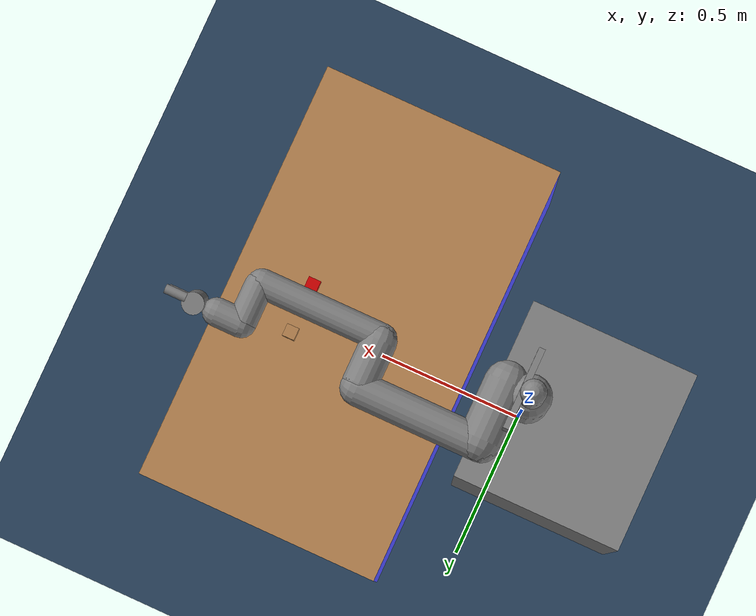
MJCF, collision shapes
<mujoco model="sawyer scene">
  <include file="sawyer-gripper.xml"/>
  <include file="block_dependencies.xml"/>
  <include file="wall_dependencies.xml"/>

  <statistic center="0.3 0 0.4" extent="0.8"/>

  <visual>
    <headlight diffuse="0.6 0.6 0.6" ambient="0.3 0.3 0.3" specular="0 0 0"/>
    <rgba haze="0.15 0.25 0.35 1"/>
    <global azimuth="140" elevation="-20"/>
  </visual>

  <asset>
    <texture type="skybox" builtin="gradient" rgb1="0.3 0.5 0.7" rgb2="0 0 0" width="512" height="3072"/>
    <texture type="2d" name="groundplane" builtin="checker" mark="edge" rgb1="0.2 0.3 0.4" rgb2="0.1 0.2 0.3"
      markrgb="0.8 0.8 0.8" width="300" height="300"/>
    <material name="groundplane" texture="groundplane" texuniform="true" texrepeat="5 5" reflectance="0.2"/>
  </asset>

  <asset>
      <texture name="T_table" type="cube" file="textures/wood2.png"/>
      <texture name="T_floor" type="2d" file="textures/floor2.png"/>

      <material name="table_wood" texture="T_table" shininess=".3" specular="0.5"/>
      <material name="table_col" rgba="0.3 0.3 1.0 0.5" shininess="0" specular="0"/>

      <mesh file="../meshes/table/tablebody.stl" name="tablebody" scale="1 1 1"/>
      <mesh file="../meshes/table/tabletop.stl" name="tabletop" scale="1 1 1"/>
  </asset>

  <asset>
      <texture name="T_wallmetal" type="cube" file="textures/metal.png"/>
      <material name="wall_metal" texture="T_wallmetal" shininess="1" reflectance="1" specular=".5"/>
  </asset>

  <worldbody>
    <light pos="0 0 1.5" dir="0 0 -1" directional="true"/>
    <geom name="floor" size="0 0 0.05" type="plane" material="groundplane"/>

    <body name="tablelink" pos="0.6 0 0.915" euler="0 0 1.5708">
      <geom name="tablelink" material="table_wood" group="1" type="box" size=".7 .4 .027" pos="0 0 -.027" conaffinity="0"
            contype="0"/>
      <geom name="tablebody" material="table_wood" group="1" mesh="tablebody" pos="0 0 -0.65" type="mesh" conaffinity="0"
            contype="0"/>
      <geom name="tabletop" material="table_col" group="4" pos="0.0 0.0 -0.46" size="0.7 0.4 0.46" type="box" conaffinity="1"
            contype="0"/>
    </body>

    <body name="block1" pos="0.75 0.11 1.0"> <!-- Adjust height to be on the table -->
      <joint name="block1_joint" type="free" limited="false" damping="0." armature="0."/>
      <inertial mass="0.1" diaginertia="0.001 0.001 0.001" pos="0 0 0"/>
      <geom name="manip_object1" material="block_wood" type="box" size="0.02 0.02 0.02" pos="0 0 0" contype="1" conaffinity="1"/>
    </body>

    <body name="block2" pos="0.75 0.03 1.0"> <!-- Adjust height to be on the table -->
      <joint name="block2_joint" type="free" limited="false" damping="0." armature="0."/>
      <inertial mass="0.1" diaginertia="0.001 0.001 0.001" pos="0 0 0"/>
      <geom name="manip_object2" material="block_col" type="box" size="0.02 0.02 0.02" pos="0 0 0" contype="1" conaffinity="1"/>
    </body>

    <body name="block3" pos="0.75 -0.05 1.0"> <!-- Adjust height to be on the table -->
      <joint name="block3_joint" type="free" limited="false" damping="0." armature="0."/>
      <inertial mass="0.1" diaginertia="0.001 0.001 0.001" pos="0 0 0"/>
      <geom name="manip_object3" material="block_red" type="box" size="0.02 0.02 0.02" pos="0 0 0" contype="1" conaffinity="1"/>
    </body>

  </worldbody>
</mujoco>

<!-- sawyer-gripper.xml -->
<mujoco model="sawyer">
  <compiler angle="radian" meshdir="sawyer/assets" autolimits="true"/>

  <option integrator="implicitfast"/>

  <default>
    <default class="sawyer">
      <material specular="0.5" shininess="0.25"/>
      <joint axis="0 0 1"/>
      <general dyntype="none" biastype="affine"/>
      <default class="visual">
        <geom group="2" type="mesh" contype="0" conaffinity="0"/>
      </default>
      <default class="collision">
        <geom group="3" type="capsule" rgba="0.5 0.5 0.5 1"/>
        <default class="eef_collision">
          <geom type="cylinder"/>
        </default>
      </default>
      <site size="0.001" rgba="0.5 0.5 0.5 0.3" group="4"/>

      <default class="large_joint">
        <joint frictionloss="0.3" armature="1" damping="0.1"/>
        <general gainprm="800" biasprm="0 -800 -80" forcerange="-200 200"/>
      </default>
      <default class="medium_joint">
        <joint frictionloss="0.3" armature="1" damping="0.1"/>
        <general gainprm="800" biasprm="0 -800 -80" forcerange="-100 100"/>
      </default>
      <default class="small_joint">
        <joint frictionloss="0.1" armature="1" damping="0.1"/>
        <general gainprm="500" biasprm="0 -500 -50" forcerange="-30 30"/>
      </default>
      <default class="gripper_joint">
        <joint frictionloss="0.1" armature="0.5" damping="0.5"/>
        <general gainprm="1000" biasprm="0 -200 -20" forcerange="-50 50"/>
      </default>
    </default>
  </default>

  <asset>
    <material class="sawyer" name="red" rgba="0.5 0.1 0.1 1"/>
    <material class="sawyer" name="black" rgba="0.2 0.2 0.2 1"/>
    <material class="sawyer" name="white" rgba="1 1 1 1"/>
    <material class="sawyer" name="off_white" rgba="0.792157 0.819608 0.929412 1"/>
    <material class="sawyer" name="Mtl3" rgba="0.168627 0.152941 0.141176 1"/>
    <material class="sawyer" name="Mtl4" rgba="1 0.403922 0.121569 1"/>
    <material class="sawyer" name="Mtl7" rgba="0.250980 0.250980 0.250980 1"/>
    <material class="sawyer" name="dark_black" specular="0.0" shininess="0.25" rgba="0 0 0 1"/>
    <material class="sawyer" name="Mtl5.001" rgba="0.870588 0.309804 0.086275 1"/>
    <material class="sawyer" name="Mtl7.001" rgba="0.698039 0.698039 0.698039 1"/>
    <material class="sawyer" name="Mtl5.002" rgba="0.105882 0.105882 0.105882 1"/>
    <material class="sawyer" name="Mtl6.002" rgba="0.749020 0.749020 0.749020 1"/>
    <material class="sawyer" name="Mtl4_001" rgba="0.866667 0.905882 1 1"/>
    <material class="sawyer" name="Mtl5_001" rgba="0.501961 0.501961 0.501961 1"/>

    <mesh file="pedestal.obj"/>
    <mesh file="base_0.obj"/>
    <mesh file="base_1.obj"/>
    <mesh file="l0_0.obj"/>
    <mesh file="l0_1.obj"/>
    <mesh file="l0_2.obj"/>
    <mesh file="l0_3.obj"/>
    <mesh file="l0_4.obj"/>
    <mesh file="l0_5.obj"/>
    <mesh file="l0_6.obj"/>
    <mesh file="l1_0.obj"/>
    <mesh file="l1_1.obj"/>
    <mesh file="l1_2.obj"/>
    <mesh file="l2_0.obj"/>
    <mesh file="l2_1.obj"/>
    <mesh file="l2_2.obj"/>
    <mesh file="l2_3.obj"/>
    <mesh file="l2_4.obj"/>
    <mesh file="l3_0.obj"/>
    <mesh file="l3_1.obj"/>
    <mesh file="l3_2.obj"/>
    <mesh file="l3_3.obj"/>
    <mesh file="l4_0.obj"/>
    <mesh file="l4_1.obj"/>
    <mesh file="l4_2.obj"/>
    <mesh file="l4_3.obj"/>
    <mesh file="l4_4.obj"/>
    <mesh file="l4_5.obj"/>
    <mesh file="l4_6.obj"/>
    <mesh file="l4_7.obj"/>
    <mesh file="l5_0.obj"/>
    <mesh file="l5_1.obj"/>
    <mesh file="l5_2.obj"/>
    <mesh file="l5_3.obj"/>
    <mesh file="l5_4.obj"/>
    <mesh file="l6_0.obj"/>
    <mesh file="l6_1.obj"/>
    <mesh file="l6_2.obj"/>
    <mesh file="l6_3.obj"/>
    <mesh file="l6_4.obj"/>
    <mesh file="l6_5.obj"/>
    <mesh file="head_0.obj"/>
    <mesh file="head_2.obj"/>
    <mesh file="head_3.obj"/>
    <mesh file="head_5.obj"/>
    <mesh file="head_6.obj"/>
    <mesh file="head_7.obj"/>
    <mesh file="head_8.obj"/>
    <mesh file="head_9.obj"/>
    <mesh file="gripper_body.obj"/>
    <mesh file="gripper_finger_narrow.obj"/>
  </asset>

  <worldbody>
    <light name="top" pos="0 0 2" mode="trackcom"/>
    <body name="pedestal">
      <geom mesh="pedestal" material="black" class="visual"/>
      <geom class="collision" type="box" pos="-0.17 0 0.45" size="0.28 0.3 0.45"/>
      <body name="base" childclass="sawyer" pos="0 0 0.92">
        <inertial mass="2.0687" pos="-0.0006241 -2.8025E-05 0.065404"
          fullinertia="0.0067599 0.0067877 0.0074031 -4.2024E-05 -6.1904E-07 1.5888E-05"/>
        <geom mesh="base_0" material="black" class="visual"/>
        <geom mesh="base_1" material="red" class="visual"/>
        <body name="right_l0" pos="0 0 0.08">
          <inertial mass="5.3213" pos="0.0243645 0.0109688 0.143631" quat="0.894821 0.0089945 -0.17028 0.412576"
            diaginertia="0.0651599 0.0510954 0.0186221"/>
          <joint name="right_j0" class="large_joint" range="-3.0503 3.0503"/>
          <geom mesh="l0_0" material="Mtl7" class="visual"/>
          <geom mesh="l0_1" material="off_white" class="visual"/>
          <geom mesh="l0_2" material="red" class="visual"/>
          <geom mesh="l0_3" material="Mtl4" class="visual"/>
          <geom mesh="l0_4" material="Mtl3" class="visual"/>
          <geom mesh="l0_5" material="white" class="visual"/>
          <geom mesh="l0_6" material="black" class="visual"/>
          <geom class="collision" fromto="0 0 -0.005 0 0 0.25" size="0.07"/>
          <body name="head" pos="0 0 0.2965">
            <inertial mass="1.5795" pos="0.00532226 -2.65473e-05 0.1021"
              quat="0.999993 7.08384e-05 -0.00359812 -0.000626267" diaginertia="0.0118334 0.00827097 0.00496582"/>
            <geom mesh="head_0" material="black" class="visual"/>
            <geom mesh="head_2" material="off_white" class="visual"/>
            <geom mesh="head_3" material="Mtl7" class="visual"/>
            <geom mesh="head_5" material="black" class="visual"/>
            <geom mesh="head_6" material="white" class="visual"/>
            <geom mesh="head_7" material="dark_black" class="visual"/>
            <geom mesh="head_8" material="red" class="visual"/>
            <geom mesh="head_9" material="Mtl5.001" class="visual"/>
            <geom class="collision" fromto="-0.005 0 0.02 -0.005 0 0.205" size="0.04"/>
            <geom class="collision" type="box" pos="0.025 0 0.1" size="0.01 0.13 0.08"/>
          </body>
          <body name="right_l1" pos="0.081 0.05 0.237" quat="1 -1 1 1">
            <inertial mass="4.505" pos="-0.0030849 -0.026811 0.092521" quat="0.424888 0.891987 0.132364 -0.0794294"
              diaginertia="0.0224339 0.0221624 0.00970971"/>
            <joint name="right_j1" class="large_joint" range="-3.8095 2.2736"/>
            <geom mesh="l1_0" material="black" class="visual"/>
            <geom mesh="l1_1" material="red" class="visual"/>
            <geom mesh="l1_2" material="white" class="visual"/>
            <geom class="collision" fromto="0 0 -0.06 0 0 0.13" size="0.068"/>
            <body name="right_l2" pos="0 -0.14 0.1425" quat="1 1 0 0">
              <inertial mass="1.745" pos="-0.00016044 -0.014967 0.13582" quat="0.707831 -0.0524761 0.0516006 0.702537"
                diaginertia="0.0257928 0.025506 0.00292516"/>
              <joint name="right_j2" class="medium_joint" range="-3.0426 3.0426"/>
              <geom mesh="l2_0" material="off_white" class="visual"/>
              <geom mesh="l2_1" material="Mtl5.002" class="visual"/>
              <geom mesh="l2_2" material="white" class="visual"/>
              <geom mesh="l2_3" material="black" class="visual"/>
              <geom mesh="l2_4" material="red" class="visual"/>
              <geom class="collision" fromto="0 0 -0.15 0 0 0.26" size="0.055"/>
              <body name="right_l3" pos="0 -0.042 0.26" quat="1 -1 0 0">
                <inertial mass="2.5097" pos="-0.0048135 -0.0281 -0.084154" quat="0.902999 0.385391 -0.0880901 0.168247"
                  diaginertia="0.0102404 0.0096997 0.00369622"/>
                <joint name="right_j3" class="medium_joint" range="-3.0439 3.0439"/>
                <geom mesh="l3_0" material="off_white" class="visual"/>
                <geom mesh="l3_1" material="red" class="visual"/>
                <geom mesh="l3_2" material="white" class="visual"/>
                <geom mesh="l3_3" material="black" class="visual"/>
                <geom class="collision" fromto="0 0 -0.115 0 0 0.03" size="0.055"/>
                <body name="right_l4" pos="0 -0.125 -0.1265" quat="1 1 0 0">
                  <inertial mass="1.1136" pos="-0.00188917 0.00689948 0.134095"
                    quat="0.803247 0.031244 -0.0298409 0.594077" diaginertia="0.0136555 0.0135498 0.00127385"/>
                  <joint name="right_j4" class="small_joint" range="-2.9761 2.9761"/>
                  <geom mesh="l4_0" material="Mtl7" class="visual"/>
                  <geom mesh="l4_1" material="black" class="visual"/>
                  <geom mesh="l4_2" material="Mtl6.002" class="visual"/>
                  <geom mesh="l4_3" material="white" class="visual"/>
                  <geom mesh="l4_4" material="off_white" class="visual"/>
                  <geom mesh="l4_5" material="dark_black" class="visual"/>
                  <geom mesh="l4_6" material="red" class="visual"/>
                  <geom mesh="l4_7" material="black" class="visual"/>
                  <geom class="collision" fromto="0 0 -0.13 0 0 0.27" size="0.045"/>
                  <body name="right_l5" pos="0 0.031 0.275" quat="1 -1 0 0">
                    <inertial mass="1.5625" pos="0.0061133 -0.023697 0.076416" quat="0.404076 0.9135 0.0473125 0.00158335"
                      diaginertia="0.00474131 0.00422857 0.00190672"/>
                    <joint name="right_j5" class="small_joint" range="-2.9761 2.9761"/>
                    <geom mesh="l5_0" material="Mtl5_001" class="visual"/>
                    <geom mesh="l5_1" material="Mtl4_001" class="visual"/>
                    <geom mesh="l5_2" material="white" class="visual"/>
                    <geom mesh="l5_3" material="red" class="visual"/>
                    <geom mesh="l5_4" material="black" class="visual"/>
                    <geom fromto="0 0 -0.02 0 0 0.1" size="0.045" class="collision"/>
                    <geom fromto="0 0 0.105 0 -0.082 0.105" size="0.045" class="collision"/>
                    <body name="right_l6" pos="0 -0.11 0.1053" quat="0.0616248 0.06163 -0.704416 0.704416">
                      <inertial mass="0.3292" pos="-8.0726e-06 0.0085838 -0.0049566"
                        quat="0.479044 0.515636 -0.513069 0.491321" diaginertia="0.000360268 0.000311078 0.000214984"/>
                      <joint name="right_j6" class="small_joint" range="-4.7124 4.7124"/>
                      <geom mesh="l6_0" material="Mtl4" class="visual"/>
                      <geom mesh="l6_1" material="white" class="visual"/>
                      <geom mesh="l6_2" material="red" class="visual"/>
                      <geom mesh="l6_3" material="black" class="visual"/>
                      <geom mesh="l6_4" material="black" class="visual"/>
                      <geom mesh="l6_5" material="black" class="visual"/>
                      <site name="attachment_site" pos="0 0 0.0245" quat="0 0 0 1"/>
                      <body name="gripper_body" pos="0 0 0.02" quat="0.7071068 0 0 0.7071068">
                        <site name="end_effector" pos="0 0 0.0545" quat="0 0 0 1"/>
                        <camera name="wrist_camera" pos="0.09 0 0.02" xyaxes="0 1 0 0.774 0 0.633" fovy="85"/>
                        <inertial mass="0.3292" pos="0 0 0" quat="0 0 0 1" diaginertia="0.0003 0.0003 0.0003"/>
                        <geom mesh="gripper_body" material="red" class="visual"/>
                        <geom class="eef_collision" pos="0 0 0.024" quat="0.7071 0.7071 0 0" size="0.035 0.052" contype="0" conaffinity="0"/>
                        <body name="gripper_finger_right" pos="0.002 0.028 0.045" quat="0 0 0 1">
                          <inertial mass="0.0907185" pos="0 0 0" quat="0 0 0 1" diaginertia="0.0003 0.0003 0.0003"/>
                          <geom mesh="gripper_finger_narrow" material="black" class="visual"/>
                          <joint name="gripper_right_close" type="slide" class="gripper_joint" pos="0 0 0" axis="0 1 0" range="0 0.035"/>
                          <geom class="eef_collision" pos="0.003 -0.0165 0.039" size="0.015 0.034" friction="5.0 0.1 0.01" contype="1" conaffinity="1"/>
                        </body>
                        <body name="gripper_finger_left" pos="0.0035 -0.028 0.045" quat="1 0 0 0">
                          <inertial mass="0.0907185" pos="0 0 0" quat="0 0 0 1" diaginertia="0.0000001 0.0000001 0.0000001"/>
                          <geom mesh="gripper_finger_narrow" material="black" class="visual"/>
                          <geom class="eef_collision" pos="0.003 -0.0165 0.039" size="0.015 0.034" friction="5.0 0.1 0.01" contype="1" conaffinity="1"/>
                          <joint name="gripper_left_close" type="slide" class="gripper_joint" pos="0 0 0" axis="0 1 0" range="0 0.035"/>
                        </body>
                      </body>
                    </body>
                  </body>
                </body>
              </body>
            </body>
          </body>
        </body>
      </body>
    </body>
  </worldbody>

  <contact>
    <exclude body1="base" body2="right_l0"/>
  </contact>

  <actuator>
    <general name="a0" joint="right_j0" class="large_joint" ctrlrange="-3.0503 3.0503"/>
    <general name="a1" joint="right_j1" class="large_joint" ctrlrange="-3.8095 2.2736"/>
    <general name="a2" joint="right_j2" class="medium_joint" ctrlrange="-3.0426 3.0426"/>
    <general name="a3" joint="right_j3" class="medium_joint" ctrlrange="-3.0439 3.0439"/>
    <general name="a4" joint="right_j4" class="small_joint" ctrlrange="-2.9761 2.9761"/>
    <general name="a5" joint="right_j5" class="small_joint" ctrlrange="-2.9761 2.9761"/>
    <general name="a6" joint="right_j6" class="small_joint" ctrlrange="-4.7124 4.7124"/>
    <general name="figer_right" joint="gripper_right_close" class="gripper_joint" ctrlrange="0 0.035"/>
    <general name="figer_left" joint="gripper_left_close" class="gripper_joint" ctrlrange="0 0.035"/>
  </actuator>

</mujoco>

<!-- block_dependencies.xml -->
<mujocoinclude>
    <compiler angle="radian" inertiafromgeom="auto" inertiagrouprange="4 5"/>
    <asset>
        <texture name="T_block_wood" type="cube" file="textures/wood4.png"/>

      <material name="block_col" rgba="0.3 0.3 1.0 0.5" shininess="0" specular="0"/>
      <material name="block_wood" texture="T_block_wood" shininess="1" reflectance=".7" specular=".5"/>
      <material name="block_red" rgba=".8 0 0 1" shininess=".2" reflectance=".2" specular=".5"/>

    </asset>
    <default>
      <default class="block_base">
          <joint armature="0.001" damping="2" limited="true"/>
          <geom conaffinity="0" contype="0" group="1" type="mesh"/>
          <position ctrllimited="true" ctrlrange="0 1.57"/>
          <default class="block_col">
              <geom conaffinity="1" condim="4" contype="1" group="4" material="block_col" solimp="0.99 0.99 0.01" solref="0.01 1"/>
          </default>
      </default>
    </default>

    <asset>
      <mesh file="../meshes/block/block.stl" name="block"/>
    </asset>

</mujocoinclude>

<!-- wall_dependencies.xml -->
<mujocoinclude>
    <compiler angle="radian" inertiafromgeom="auto" inertiagrouprange="4 5"/>
    <asset>
        <texture name="T_wallbrick" type="cube" file="textures/brick1.png"/>
      <material name="wall_col" rgba="0.3 0.3 1.0 0.5" shininess="0" specular="0"/>
      <material name="wall_brick" texture="T_wallbrick" shininess="1" reflectance=".7" specular=".5"/>
    </asset>
    <default>
      <default class="wall_base">
          <joint armature="0.001" damping="2" limited="true"/>
          <geom conaffinity="0" contype="0" group="1" type="mesh"/>
          <default class="wall_viz">
              <geom condim="4" type="mesh"/>
          </default>
          <default class="wall_col">
              <geom conaffinity="1" condim="3" contype="0" group="4" material="wall_col" solimp="0.99 0.99 0.01" solref="0.01 1"/>
          </default>

      </default>
    </default>

</mujocoinclude>
